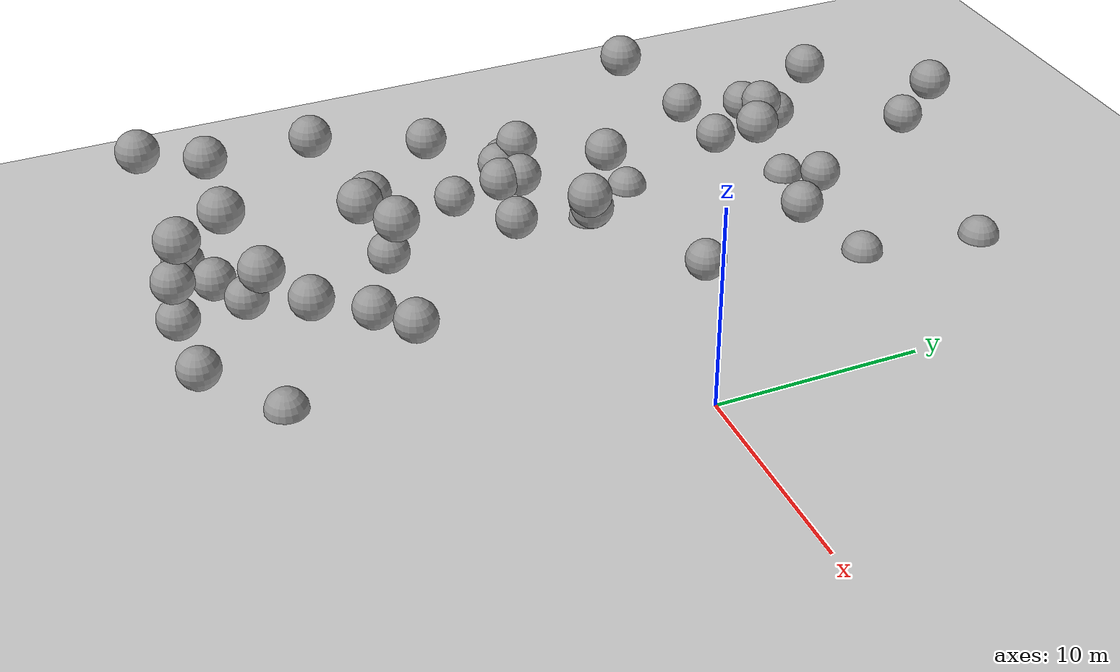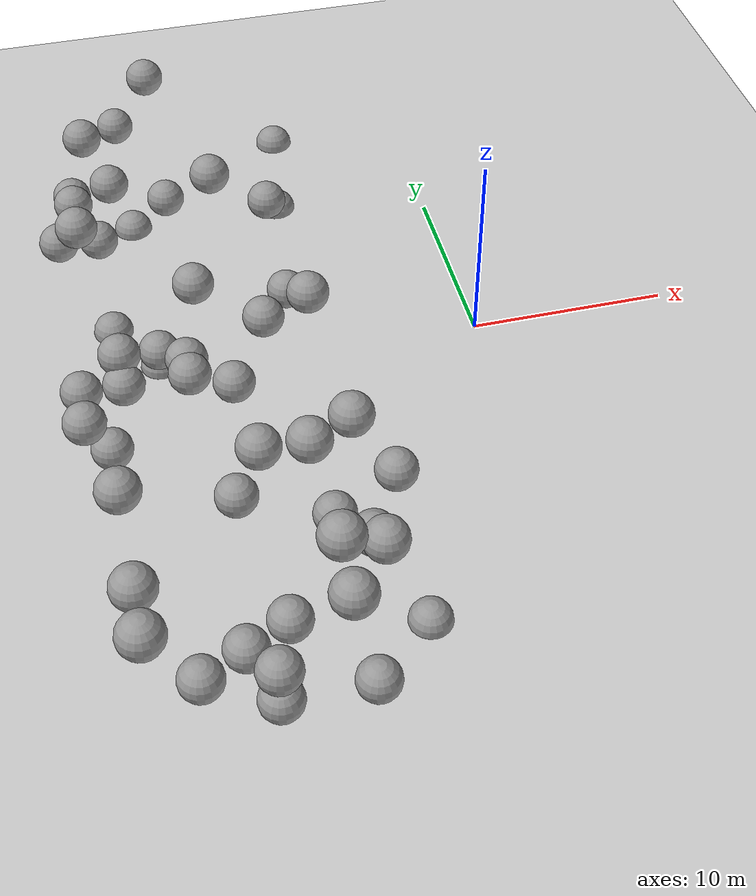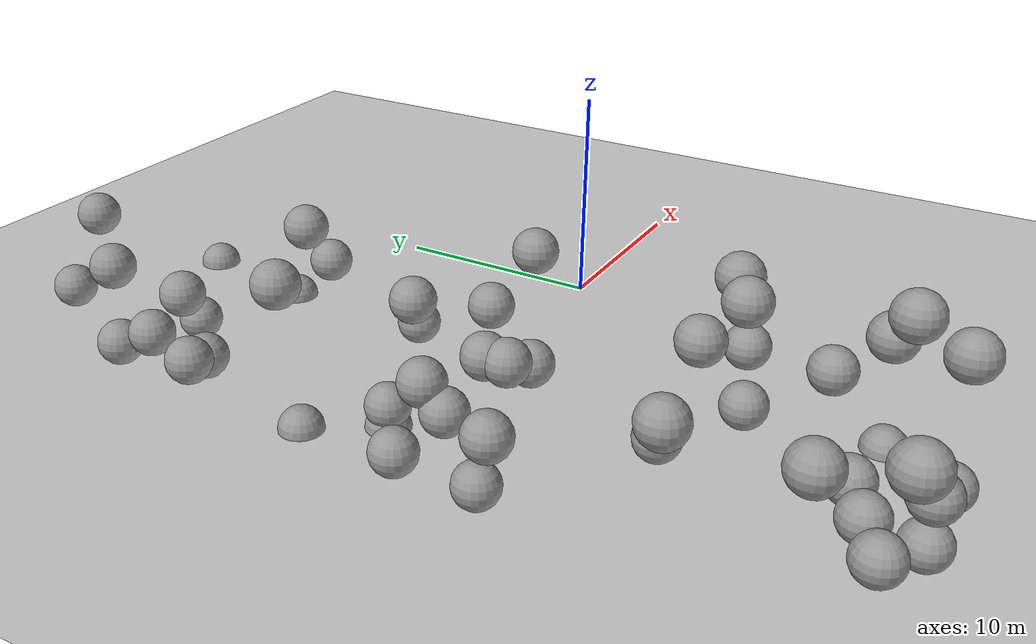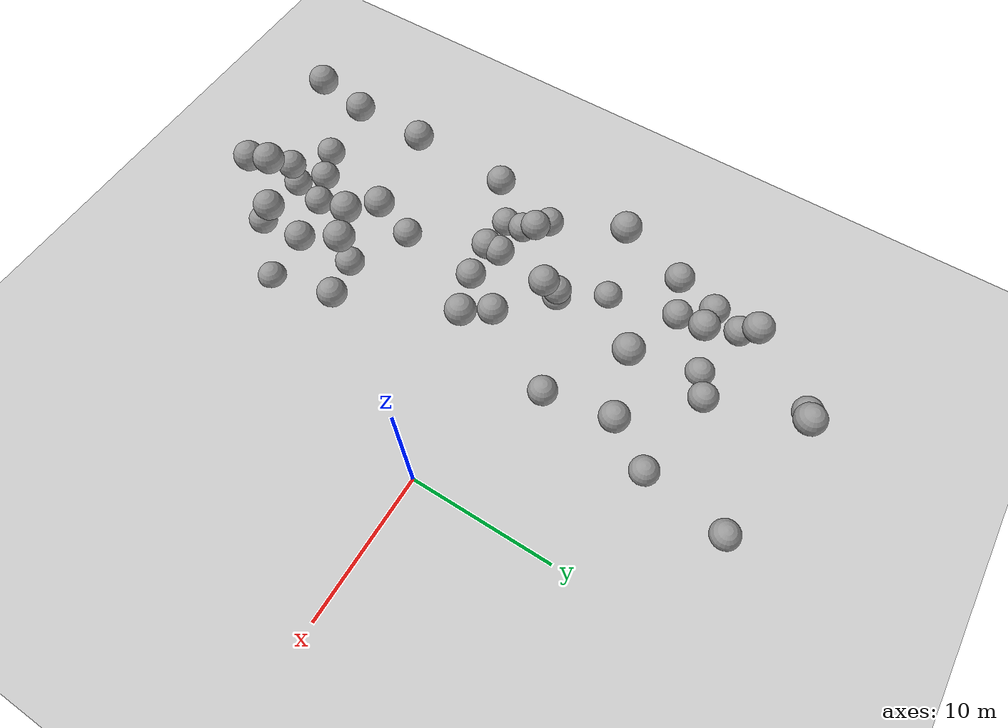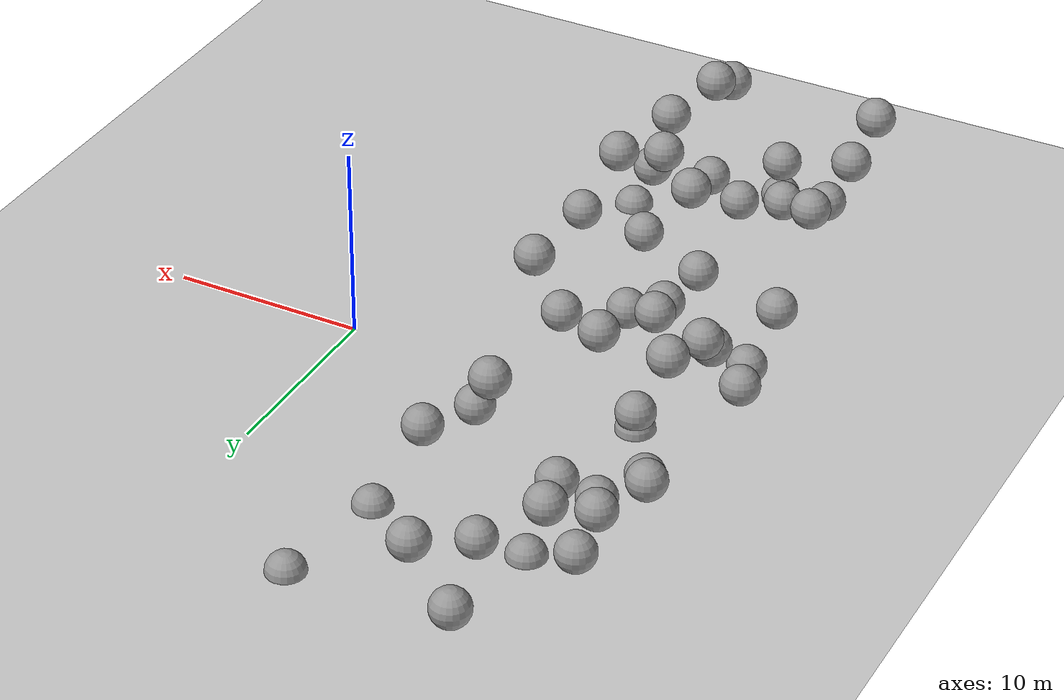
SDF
<sdf version="1.7">
 <world name="default">
  <model name="ground_plane">
   <static>1</static>
   <link name="link">
    <collision name="collision">
     <geometry><plane><normal>0 0 1</normal><size>100 100</size></plane></geometry>
     <surface>
      <contact><collide_bitmask>65535</collide_bitmask></contact>
      <friction><ode><mu>100</mu><mu2>50</mu2></ode></friction>
     </surface>
    </collision>
    <visual name="visual">
     <cast_shadows>0</cast_shadows>
     <geometry><plane><normal>0 0 1</normal><size>100 100</size></plane></geometry>
     <material>
      <script><uri>file://media/materials/scripts/gazebo.material</uri><name>Gazebo/Grey</name></script>
     </material>
    </visual>
   </link>
  </model>
  <model name="sphere_1">
   <static>1</static>
   <pose>-16 1 1 0 0 0</pose>
   <link name="link">
    <inertial>
     <mass>418.87902047863906</mass>
     <inertia>
      <ixx>167.55160819145564</ixx>
      <iyy>167.55160819145564</iyy>
      <izz>167.55160819145564</izz>
      <ixy>0</ixy>
      <ixz>0</ixz>
      <iyz>0</iyz>
     </inertia>
    </inertial>
    <collision name="collision"><geometry><sphere><radius>1.0</radius></sphere></geometry></collision>
    <visual name="visual">
     <geometry><sphere><radius>1.0</radius></sphere></geometry>
     <material>
      <script><uri>file://media/materials/scripts/gazebo.material</uri><name>Gazebo/Grey</name></script>
     </material>
    </visual>
   </link>
  </model>
  <model name="sphere_2">
   <static>1</static>
   <pose>-19 -12 6 0 0 0</pose>
   <link name="link">
    <inertial>
     <mass>418.87902047863906</mass>
     <inertia>
      <ixx>167.55160819145564</ixx>
      <iyy>167.55160819145564</iyy>
      <izz>167.55160819145564</izz>
      <ixy>0</ixy>
      <ixz>0</ixz>
      <iyz>0</iyz>
     </inertia>
    </inertial>
    <collision name="collision"><geometry><sphere><radius>1.0</radius></sphere></geometry></collision>
    <visual name="visual">
     <geometry><sphere><radius>1.0</radius></sphere></geometry>
     <material>
      <script><uri>file://media/materials/scripts/gazebo.material</uri><name>Gazebo/Grey</name></script>
     </material>
    </visual>
   </link>
  </model>
  <model name="sphere_4">
   <static>1</static>
   <pose>-18 14 5 0 0 0</pose>
   <link name="link">
    <inertial>
     <mass>418.87902047863906</mass>
     <inertia>
      <ixx>167.55160819145564</ixx>
      <iyy>167.55160819145564</iyy>
      <izz>167.55160819145564</izz>
      <ixy>0</ixy>
      <ixz>0</ixz>
      <iyz>0</iyz>
     </inertia>
    </inertial>
    <collision name="collision"><geometry><sphere><radius>1.0</radius></sphere></geometry></collision>
    <visual name="visual">
     <geometry><sphere><radius>1.0</radius></sphere></geometry>
     <material>
      <script><uri>file://media/materials/scripts/gazebo.material</uri><name>Gazebo/Grey</name></script>
     </material>
    </visual>
   </link>
  </model>
  <model name="sphere_6">
   <static>1</static>
   <pose>-13 -11 6 0 0 0</pose>
   <link name="link">
    <inertial>
     <mass>418.87902047863906</mass>
     <inertia>
      <ixx>167.55160819145564</ixx>
      <iyy>167.55160819145564</iyy>
      <izz>167.55160819145564</izz>
      <ixy>0</ixy>
      <ixz>0</ixz>
      <iyz>0</iyz>
     </inertia>
    </inertial>
    <collision name="collision"><geometry><sphere><radius>1.0</radius></sphere></geometry></collision>
    <visual name="visual">
     <geometry><sphere><radius>1.0</radius></sphere></geometry>
     <material>
      <script><uri>file://media/materials/scripts/gazebo.material</uri><name>Gazebo/Grey</name></script>
     </material>
    </visual>
   </link>
  </model>
  <model name="sphere_12">
   <static>1</static>
   <pose>-9 9 3 0 0 0</pose>
   <link name="link">
    <inertial>
     <mass>418.87902047863906</mass>
     <inertia>
      <ixx>167.55160819145564</ixx>
      <iyy>167.55160819145564</iyy>
      <izz>167.55160819145564</izz>
      <ixy>0</ixy>
      <ixz>0</ixz>
      <iyz>0</iyz>
     </inertia>
    </inertial>
    <collision name="collision"><geometry><sphere><radius>1.0</radius></sphere></geometry></collision>
    <visual name="visual">
     <geometry><sphere><radius>1.0</radius></sphere></geometry>
     <material>
      <script><uri>file://media/materials/scripts/gazebo.material</uri><name>Gazebo/Grey</name></script>
     </material>
    </visual>
   </link>
  </model>
  <model name="sphere_14">
   <static>1</static>
   <pose>-7 18 0 0 0 0</pose>
   <link name="link">
    <inertial>
     <mass>418.87902047863906</mass>
     <inertia>
      <ixx>167.55160819145564</ixx>
      <iyy>167.55160819145564</iyy>
      <izz>167.55160819145564</izz>
      <ixy>0</ixy>
      <ixz>0</ixz>
      <iyz>0</iyz>
     </inertia>
    </inertial>
    <collision name="collision"><geometry><sphere><radius>1.0</radius></sphere></geometry></collision>
    <visual name="visual">
     <geometry><sphere><radius>1.0</radius></sphere></geometry>
     <material>
      <script><uri>file://media/materials/scripts/gazebo.material</uri><name>Gazebo/Grey</name></script>
     </material>
    </visual>
   </link>
  </model>
  <model name="sphere_15">
   <static>1</static>
   <pose>-7 -11 3 0 0 0</pose>
   <link name="link">
    <inertial>
     <mass>418.87902047863906</mass>
     <inertia>
      <ixx>167.55160819145564</ixx>
      <iyy>167.55160819145564</iyy>
      <izz>167.55160819145564</izz>
      <ixy>0</ixy>
      <ixz>0</ixz>
      <iyz>0</iyz>
     </inertia>
    </inertial>
    <collision name="collision"><geometry><sphere><radius>1.0</radius></sphere></geometry></collision>
    <visual name="visual">
     <geometry><sphere><radius>1.0</radius></sphere></geometry>
     <material>
      <script><uri>file://media/materials/scripts/gazebo.material</uri><name>Gazebo/Grey</name></script>
     </material>
    </visual>
   </link>
  </model>
  <model name="sphere_17">
   <static>1</static>
   <pose>-9 4 1 0 0 0</pose>
   <link name="link">
    <inertial>
     <mass>418.87902047863906</mass>
     <inertia>
      <ixx>167.55160819145564</ixx>
      <iyy>167.55160819145564</iyy>
      <izz>167.55160819145564</izz>
      <ixy>0</ixy>
      <ixz>0</ixz>
      <iyz>0</iyz>
     </inertia>
    </inertial>
    <collision name="collision"><geometry><sphere><radius>1.0</radius></sphere></geometry></collision>
    <visual name="visual">
     <geometry><sphere><radius>1.0</radius></sphere></geometry>
     <material>
      <script><uri>file://media/materials/scripts/gazebo.material</uri><name>Gazebo/Grey</name></script>
     </material>
    </visual>
   </link>
  </model>
  <model name="sphere_19">
   <static>1</static>
   <pose>-15 -4 4 0 0 0</pose>
   <link name="link">
    <inertial>
     <mass>418.87902047863906</mass>
     <inertia>
      <ixx>167.55160819145564</ixx>
      <iyy>167.55160819145564</iyy>
      <izz>167.55160819145564</izz>
      <ixy>0</ixy>
      <ixz>0</ixz>
      <iyz>0</iyz>
     </inertia>
    </inertial>
    <collision name="collision"><geometry><sphere><radius>1.0</radius></sphere></geometry></collision>
    <visual name="visual">
     <geometry><sphere><radius>1.0</radius></sphere></geometry>
     <material>
      <script><uri>file://media/materials/scripts/gazebo.material</uri><name>Gazebo/Grey</name></script>
     </material>
    </visual>
   </link>
  </model>
  <model name="sphere_20">
   <static>1</static>
   <pose>-16 1 0 0 0 0</pose>
   <link name="link">
    <inertial>
     <mass>418.87902047863906</mass>
     <inertia>
      <ixx>167.55160819145564</ixx>
      <iyy>167.55160819145564</iyy>
      <izz>167.55160819145564</izz>
      <ixy>0</ixy>
      <ixz>0</ixz>
      <iyz>0</iyz>
     </inertia>
    </inertial>
    <collision name="collision"><geometry><sphere><radius>1.0</radius></sphere></geometry></collision>
    <visual name="visual">
     <geometry><sphere><radius>1.0</radius></sphere></geometry>
     <material>
      <script><uri>file://media/materials/scripts/gazebo.material</uri><name>Gazebo/Grey</name></script>
     </material>
    </visual>
   </link>
  </model>
  <model name="sphere_21">
   <static>1</static>
   <pose>-18 -3 3 0 0 0</pose>
   <link name="link">
    <inertial>
     <mass>418.87902047863906</mass>
     <inertia>
      <ixx>167.55160819145564</ixx>
      <iyy>167.55160819145564</iyy>
      <izz>167.55160819145564</izz>
      <ixy>0</ixy>
      <ixz>0</ixz>
      <iyz>0</iyz>
     </inertia>
    </inertial>
    <collision name="collision"><geometry><sphere><radius>1.0</radius></sphere></geometry></collision>
    <visual name="visual">
     <geometry><sphere><radius>1.0</radius></sphere></geometry>
     <material>
      <script><uri>file://media/materials/scripts/gazebo.material</uri><name>Gazebo/Grey</name></script>
     </material>
    </visual>
   </link>
  </model>
  <model name="sphere_24">
   <static>1</static>
   <pose>-19 -17 6 0 0 0</pose>
   <link name="link">
    <inertial>
     <mass>418.87902047863906</mass>
     <inertia>
      <ixx>167.55160819145564</ixx>
      <iyy>167.55160819145564</iyy>
      <izz>167.55160819145564</izz>
      <ixy>0</ixy>
      <ixz>0</ixz>
      <iyz>0</iyz>
     </inertia>
    </inertial>
    <collision name="collision"><geometry><sphere><radius>1.0</radius></sphere></geometry></collision>
    <visual name="visual">
     <geometry><sphere><radius>1.0</radius></sphere></geometry>
     <material>
      <script><uri>file://media/materials/scripts/gazebo.material</uri><name>Gazebo/Grey</name></script>
     </material>
    </visual>
   </link>
  </model>
  <model name="sphere_29">
   <static>1</static>
   <pose>-18 9 2 0 0 0</pose>
   <link name="link">
    <inertial>
     <mass>418.87902047863906</mass>
     <inertia>
      <ixx>167.55160819145564</ixx>
      <iyy>167.55160819145564</iyy>
      <izz>167.55160819145564</izz>
      <ixy>0</ixy>
      <ixz>0</ixz>
      <iyz>0</iyz>
     </inertia>
    </inertial>
    <collision name="collision"><geometry><sphere><radius>1.0</radius></sphere></geometry></collision>
    <visual name="visual">
     <geometry><sphere><radius>1.0</radius></sphere></geometry>
     <material>
      <script><uri>file://media/materials/scripts/gazebo.material</uri><name>Gazebo/Grey</name></script>
     </material>
    </visual>
   </link>
  </model>
  <model name="sphere_30">
   <static>1</static>
   <pose>-18 4 0 0 0 0</pose>
   <link name="link">
    <inertial>
     <mass>418.87902047863906</mass>
     <inertia>
      <ixx>167.55160819145564</ixx>
      <iyy>167.55160819145564</iyy>
      <izz>167.55160819145564</izz>
      <ixy>0</ixy>
      <ixz>0</ixz>
      <iyz>0</iyz>
     </inertia>
    </inertial>
    <collision name="collision"><geometry><sphere><radius>1.0</radius></sphere></geometry></collision>
    <visual name="visual">
     <geometry><sphere><radius>1.0</radius></sphere></geometry>
     <material>
      <script><uri>file://media/materials/scripts/gazebo.material</uri><name>Gazebo/Grey</name></script>
     </material>
    </visual>
   </link>
  </model>
  <model name="sphere_34">
   <static>1</static>
   <pose>-9 -17 6 0 0 0</pose>
   <link name="link">
    <inertial>
     <mass>418.87902047863906</mass>
     <inertia>
      <ixx>167.55160819145564</ixx>
      <iyy>167.55160819145564</iyy>
      <izz>167.55160819145564</izz>
      <ixy>0</ixy>
      <ixz>0</ixz>
      <iyz>0</iyz>
     </inertia>
    </inertial>
    <collision name="collision"><geometry><sphere><radius>1.0</radius></sphere></geometry></collision>
    <visual name="visual">
     <geometry><sphere><radius>1.0</radius></sphere></geometry>
     <material>
      <script><uri>file://media/materials/scripts/gazebo.material</uri><name>Gazebo/Grey</name></script>
     </material>
    </visual>
   </link>
  </model>
  <model name="sphere_35">
   <static>1</static>
   <pose>-17 11 4 0 0 0</pose>
   <link name="link">
    <inertial>
     <mass>418.87902047863906</mass>
     <inertia>
      <ixx>167.55160819145564</ixx>
      <iyy>167.55160819145564</iyy>
      <izz>167.55160819145564</izz>
      <ixy>0</ixy>
      <ixz>0</ixz>
      <iyz>0</iyz>
     </inertia>
    </inertial>
    <collision name="collision"><geometry><sphere><radius>1.0</radius></sphere></geometry></collision>
    <visual name="visual">
     <geometry><sphere><radius>1.0</radius></sphere></geometry>
     <material>
      <script><uri>file://media/materials/scripts/gazebo.material</uri><name>Gazebo/Grey</name></script>
     </material>
    </visual>
   </link>
  </model>
  <model name="sphere_40">
   <static>1</static>
   <pose>-11 -1 4 0 0 0</pose>
   <link name="link">
    <inertial>
     <mass>418.87902047863906</mass>
     <inertia>
      <ixx>167.55160819145564</ixx>
      <iyy>167.55160819145564</iyy>
      <izz>167.55160819145564</izz>
      <ixy>0</ixy>
      <ixz>0</ixz>
      <iyz>0</iyz>
     </inertia>
    </inertial>
    <collision name="collision"><geometry><sphere><radius>1.0</radius></sphere></geometry></collision>
    <visual name="visual">
     <geometry><sphere><radius>1.0</radius></sphere></geometry>
     <material>
      <script><uri>file://media/materials/scripts/gazebo.material</uri><name>Gazebo/Grey</name></script>
     </material>
    </visual>
   </link>
  </model>
  <model name="sphere_41">
   <static>1</static>
   <pose>-14 13 1 0 0 0</pose>
   <link name="link">
    <inertial>
     <mass>418.87902047863906</mass>
     <inertia>
      <ixx>167.55160819145564</ixx>
      <iyy>167.55160819145564</iyy>
      <izz>167.55160819145564</izz>
      <ixy>0</ixy>
      <ixz>0</ixz>
      <iyz>0</iyz>
     </inertia>
    </inertial>
    <collision name="collision"><geometry><sphere><radius>1.0</radius></sphere></geometry></collision>
    <visual name="visual">
     <geometry><sphere><radius>1.0</radius></sphere></geometry>
     <material>
      <script><uri>file://media/materials/scripts/gazebo.material</uri><name>Gazebo/Grey</name></script>
     </material>
    </visual>
   </link>
  </model>
  <model name="sphere_44">
   <static>1</static>
   <pose>-19 4 7 0 0 0</pose>
   <link name="link">
    <inertial>
     <mass>418.87902047863906</mass>
     <inertia>
      <ixx>167.55160819145564</ixx>
      <iyy>167.55160819145564</iyy>
      <izz>167.55160819145564</izz>
      <ixy>0</ixy>
      <ixz>0</ixz>
      <iyz>0</iyz>
     </inertia>
    </inertial>
    <collision name="collision"><geometry><sphere><radius>1.0</radius></sphere></geometry></collision>
    <visual name="visual">
     <geometry><sphere><radius>1.0</radius></sphere></geometry>
     <material>
      <script><uri>file://media/materials/scripts/gazebo.material</uri><name>Gazebo/Grey</name></script>
     </material>
    </visual>
   </link>
  </model>
  <model name="sphere_47">
   <static>1</static>
   <pose>-14 -20 1 0 0 0</pose>
   <link name="link">
    <inertial>
     <mass>418.87902047863906</mass>
     <inertia>
      <ixx>167.55160819145564</ixx>
      <iyy>167.55160819145564</iyy>
      <izz>167.55160819145564</izz>
      <ixy>0</ixy>
      <ixz>0</ixz>
      <iyz>0</iyz>
     </inertia>
    </inertial>
    <collision name="collision"><geometry><sphere><radius>1.0</radius></sphere></geometry></collision>
    <visual name="visual">
     <geometry><sphere><radius>1.0</radius></sphere></geometry>
     <material>
      <script><uri>file://media/materials/scripts/gazebo.material</uri><name>Gazebo/Grey</name></script>
     </material>
    </visual>
   </link>
  </model>
  <model name="sphere_48">
   <static>1</static>
   <pose>-11 -12 7 0 0 0</pose>
   <link name="link">
    <inertial>
     <mass>418.87902047863906</mass>
     <inertia>
      <ixx>167.55160819145564</ixx>
      <iyy>167.55160819145564</iyy>
      <izz>167.55160819145564</izz>
      <ixy>0</ixy>
      <ixz>0</ixz>
      <iyz>0</iyz>
     </inertia>
    </inertial>
    <collision name="collision"><geometry><sphere><radius>1.0</radius></sphere></geometry></collision>
    <visual name="visual">
     <geometry><sphere><radius>1.0</radius></sphere></geometry>
     <material>
      <script><uri>file://media/materials/scripts/gazebo.material</uri><name>Gazebo/Grey</name></script>
     </material>
    </visual>
   </link>
  </model>
  <model name="sphere_49">
   <static>1</static>
   <pose>-14 -20 3 0 0 0</pose>
   <link name="link">
    <inertial>
     <mass>418.87902047863906</mass>
     <inertia>
      <ixx>167.55160819145564</ixx>
      <iyy>167.55160819145564</iyy>
      <izz>167.55160819145564</izz>
      <ixy>0</ixy>
      <ixz>0</ixz>
      <iyz>0</iyz>
     </inertia>
    </inertial>
    <collision name="collision"><geometry><sphere><radius>1.0</radius></sphere></geometry></collision>
    <visual name="visual">
     <geometry><sphere><radius>1.0</radius></sphere></geometry>
     <material>
      <script><uri>file://media/materials/scripts/gazebo.material</uri><name>Gazebo/Grey</name></script>
     </material>
    </visual>
   </link>
  </model>
  <model name="sphere_50">
   <static>1</static>
   <pose>-7 -17 0 0 0 0</pose>
   <link name="link">
    <inertial>
     <mass>418.87902047863906</mass>
     <inertia>
      <ixx>167.55160819145564</ixx>
      <iyy>167.55160819145564</iyy>
      <izz>167.55160819145564</izz>
      <ixy>0</ixy>
      <ixz>0</ixz>
      <iyz>0</iyz>
     </inertia>
    </inertial>
    <collision name="collision"><geometry><sphere><radius>1.0</radius></sphere></geometry></collision>
    <visual name="visual">
     <geometry><sphere><radius>1.0</radius></sphere></geometry>
     <material>
      <script><uri>file://media/materials/scripts/gazebo.material</uri><name>Gazebo/Grey</name></script>
     </material>
    </visual>
   </link>
  </model>
  <model name="sphere_55">
   <static>1</static>
   <pose>-12 8 6 0 0 0</pose>
   <link name="link">
    <inertial>
     <mass>418.87902047863906</mass>
     <inertia>
      <ixx>167.55160819145564</ixx>
      <iyy>167.55160819145564</iyy>
      <izz>167.55160819145564</izz>
      <ixy>0</ixy>
      <ixz>0</ixz>
      <iyz>0</iyz>
     </inertia>
    </inertial>
    <collision name="collision"><geometry><sphere><radius>1.0</radius></sphere></geometry></collision>
    <visual name="visual">
     <geometry><sphere><radius>1.0</radius></sphere></geometry>
     <material>
      <script><uri>file://media/materials/scripts/gazebo.material</uri><name>Gazebo/Grey</name></script>
     </material>
    </visual>
   </link>
  </model>
  <model name="sphere_57">
   <static>1</static>
   <pose>-19 11 3 0 0 0</pose>
   <link name="link">
    <inertial>
     <mass>418.87902047863906</mass>
     <inertia>
      <ixx>167.55160819145564</ixx>
      <iyy>167.55160819145564</iyy>
      <izz>167.55160819145564</izz>
      <ixy>0</ixy>
      <ixz>0</ixz>
      <iyz>0</iyz>
     </inertia>
    </inertial>
    <collision name="collision"><geometry><sphere><radius>1.0</radius></sphere></geometry></collision>
    <visual name="visual">
     <geometry><sphere><radius>1.0</radius></sphere></geometry>
     <material>
      <script><uri>file://media/materials/scripts/gazebo.material</uri><name>Gazebo/Grey</name></script>
     </material>
    </visual>
   </link>
  </model>
  <model name="sphere_61">
   <static>1</static>
   <pose>-20 8 3 0 0 0</pose>
   <link name="link">
    <inertial>
     <mass>418.87902047863906</mass>
     <inertia>
      <ixx>167.55160819145564</ixx>
      <iyy>167.55160819145564</iyy>
      <izz>167.55160819145564</izz>
      <ixy>0</ixy>
      <ixz>0</ixz>
      <iyz>0</iyz>
     </inertia>
    </inertial>
    <collision name="collision"><geometry><sphere><radius>1.0</radius></sphere></geometry></collision>
    <visual name="visual">
     <geometry><sphere><radius>1.0</radius></sphere></geometry>
     <material>
      <script><uri>file://media/materials/scripts/gazebo.material</uri><name>Gazebo/Grey</name></script>
     </material>
    </visual>
   </link>
  </model>
  <model name="sphere_62">
   <static>1</static>
   <pose>-17 -19 2 0 0 0</pose>
   <link name="link">
    <inertial>
     <mass>418.87902047863906</mass>
     <inertia>
      <ixx>167.55160819145564</ixx>
      <iyy>167.55160819145564</iyy>
      <izz>167.55160819145564</izz>
      <ixy>0</ixy>
      <ixz>0</ixz>
      <iyz>0</iyz>
     </inertia>
    </inertial>
    <collision name="collision"><geometry><sphere><radius>1.0</radius></sphere></geometry></collision>
    <visual name="visual">
     <geometry><sphere><radius>1.0</radius></sphere></geometry>
     <material>
      <script><uri>file://media/materials/scripts/gazebo.material</uri><name>Gazebo/Grey</name></script>
     </material>
    </visual>
   </link>
  </model>
  <model name="sphere_67">
   <static>1</static>
   <pose>-13 -17 2 0 0 0</pose>
   <link name="link">
    <inertial>
     <mass>418.87902047863906</mass>
     <inertia>
      <ixx>167.55160819145564</ixx>
      <iyy>167.55160819145564</iyy>
      <izz>167.55160819145564</izz>
      <ixy>0</ixy>
      <ixz>0</ixz>
      <iyz>0</iyz>
     </inertia>
    </inertial>
    <collision name="collision"><geometry><sphere><radius>1.0</radius></sphere></geometry></collision>
    <visual name="visual">
     <geometry><sphere><radius>1.0</radius></sphere></geometry>
     <material>
      <script><uri>file://media/materials/scripts/gazebo.material</uri><name>Gazebo/Grey</name></script>
     </material>
    </visual>
   </link>
  </model>
  <model name="sphere_68">
   <static>1</static>
   <pose>-11 -18 8 0 0 0</pose>
   <link name="link">
    <inertial>
     <mass>418.87902047863906</mass>
     <inertia>
      <ixx>167.55160819145564</ixx>
      <iyy>167.55160819145564</iyy>
      <izz>167.55160819145564</izz>
      <ixy>0</ixy>
      <ixz>0</ixz>
      <iyz>0</iyz>
     </inertia>
    </inertial>
    <collision name="collision"><geometry><sphere><radius>1.0</radius></sphere></geometry></collision>
    <visual name="visual">
     <geometry><sphere><radius>1.0</radius></sphere></geometry>
     <material>
      <script><uri>file://media/materials/scripts/gazebo.material</uri><name>Gazebo/Grey</name></script>
     </material>
    </visual>
   </link>
  </model>
  <model name="sphere_69">
   <static>1</static>
   <pose>-13 -4 3 0 0 0</pose>
   <link name="link">
    <inertial>
     <mass>418.87902047863906</mass>
     <inertia>
      <ixx>167.55160819145564</ixx>
      <iyy>167.55160819145564</iyy>
      <izz>167.55160819145564</izz>
      <ixy>0</ixy>
      <ixz>0</ixz>
      <iyz>0</iyz>
     </inertia>
    </inertial>
    <collision name="collision"><geometry><sphere><radius>1.0</radius></sphere></geometry></collision>
    <visual name="visual">
     <geometry><sphere><radius>1.0</radius></sphere></geometry>
     <material>
      <script><uri>file://media/materials/scripts/gazebo.material</uri><name>Gazebo/Grey</name></script>
     </material>
    </visual>
   </link>
  </model>
  <model name="sphere_76">
   <static>1</static>
   <pose>-11 -20 7 0 0 0</pose>
   <link name="link">
    <inertial>
     <mass>418.87902047863906</mass>
     <inertia>
      <ixx>167.55160819145564</ixx>
      <iyy>167.55160819145564</iyy>
      <izz>167.55160819145564</izz>
      <ixy>0</ixy>
      <ixz>0</ixz>
      <iyz>0</iyz>
     </inertia>
    </inertial>
    <collision name="collision"><geometry><sphere><radius>1.0</radius></sphere></geometry></collision>
    <visual name="visual">
     <geometry><sphere><radius>1.0</radius></sphere></geometry>
     <material>
      <script><uri>file://media/materials/scripts/gazebo.material</uri><name>Gazebo/Grey</name></script>
     </material>
    </visual>
   </link>
  </model>
  <model name="sphere_80">
   <static>1</static>
   <pose>-16 12 0 0 0 0</pose>
   <link name="link">
    <inertial>
     <mass>418.87902047863906</mass>
     <inertia>
      <ixx>167.55160819145564</ixx>
      <iyy>167.55160819145564</iyy>
      <izz>167.55160819145564</izz>
      <ixy>0</ixy>
      <ixz>0</ixz>
      <iyz>0</iyz>
     </inertia>
    </inertial>
    <collision name="collision"><geometry><sphere><radius>1.0</radius></sphere></geometry></collision>
    <visual name="visual">
     <geometry><sphere><radius>1.0</radius></sphere></geometry>
     <material>
      <script><uri>file://media/materials/scripts/gazebo.material</uri><name>Gazebo/Grey</name></script>
     </material>
    </visual>
   </link>
  </model>
  <model name="sphere_84">
   <static>1</static>
   <pose>-19 -5 1 0 0 0</pose>
   <link name="link">
    <inertial>
     <mass>418.87902047863906</mass>
     <inertia>
      <ixx>167.55160819145564</ixx>
      <iyy>167.55160819145564</iyy>
      <izz>167.55160819145564</izz>
      <ixy>0</ixy>
      <ixz>0</ixz>
      <iyz>0</iyz>
     </inertia>
    </inertial>
    <collision name="collision"><geometry><sphere><radius>1.0</radius></sphere></geometry></collision>
    <visual name="visual">
     <geometry><sphere><radius>1.0</radius></sphere></geometry>
     <material>
      <script><uri>file://media/materials/scripts/gazebo.material</uri><name>Gazebo/Grey</name></script>
     </material>
    </visual>
   </link>
  </model>
  <model name="sphere_85">
   <static>1</static>
   <pose>-20 -6 4 0 0 0</pose>
   <link name="link">
    <inertial>
     <mass>418.87902047863906</mass>
     <inertia>
      <ixx>167.55160819145564</ixx>
      <iyy>167.55160819145564</iyy>
      <izz>167.55160819145564</izz>
      <ixy>0</ixy>
      <ixz>0</ixz>
      <iyz>0</iyz>
     </inertia>
    </inertial>
    <collision name="collision"><geometry><sphere><radius>1.0</radius></sphere></geometry></collision>
    <visual name="visual">
     <geometry><sphere><radius>1.0</radius></sphere></geometry>
     <material>
      <script><uri>file://media/materials/scripts/gazebo.material</uri><name>Gazebo/Grey</name></script>
     </material>
    </visual>
   </link>
  </model>
  <model name="sphere_89">
   <static>1</static>
   <pose>-10 -12 2 0 0 0</pose>
   <link name="link">
    <inertial>
     <mass>418.87902047863906</mass>
     <inertia>
      <ixx>167.55160819145564</ixx>
      <iyy>167.55160819145564</iyy>
      <izz>167.55160819145564</izz>
      <ixy>0</ixy>
      <ixz>0</ixz>
      <iyz>0</iyz>
     </inertia>
    </inertial>
    <collision name="collision"><geometry><sphere><radius>1.0</radius></sphere></geometry></collision>
    <visual name="visual">
     <geometry><sphere><radius>1.0</radius></sphere></geometry>
     <material>
      <script><uri>file://media/materials/scripts/gazebo.material</uri><name>Gazebo/Grey</name></script>
     </material>
    </visual>
   </link>
  </model>
  <model name="sphere_90">
   <static>1</static>
   <pose>-14 1 5 0 0 0</pose>
   <link name="link">
    <inertial>
     <mass>418.87902047863906</mass>
     <inertia>
      <ixx>167.55160819145564</ixx>
      <iyy>167.55160819145564</iyy>
      <izz>167.55160819145564</izz>
      <ixy>0</ixy>
      <ixz>0</ixz>
      <iyz>0</iyz>
     </inertia>
    </inertial>
    <collision name="collision"><geometry><sphere><radius>1.0</radius></sphere></geometry></collision>
    <visual name="visual">
     <geometry><sphere><radius>1.0</radius></sphere></geometry>
     <material>
      <script><uri>file://media/materials/scripts/gazebo.material</uri><name>Gazebo/Grey</name></script>
     </material>
    </visual>
   </link>
  </model>
  <model name="sphere_93">
   <static>1</static>
   <pose>-8 12 0 0 0 0</pose>
   <link name="link">
    <inertial>
     <mass>418.87902047863906</mass>
     <inertia>
      <ixx>167.55160819145564</ixx>
      <iyy>167.55160819145564</iyy>
      <izz>167.55160819145564</izz>
      <ixy>0</ixy>
      <ixz>0</ixz>
      <iyz>0</iyz>
     </inertia>
    </inertial>
    <collision name="collision"><geometry><sphere><radius>1.0</radius></sphere></geometry></collision>
    <visual name="visual">
     <geometry><sphere><radius>1.0</radius></sphere></geometry>
     <material>
      <script><uri>file://media/materials/scripts/gazebo.material</uri><name>Gazebo/Grey</name></script>
     </material>
    </visual>
   </link>
  </model>
  <model name="sphere_94">
   <static>1</static>
   <pose>-15 -18 2 0 0 0</pose>
   <link name="link">
    <inertial>
     <mass>418.87902047863906</mass>
     <inertia>
      <ixx>167.55160819145564</ixx>
      <iyy>167.55160819145564</iyy>
      <izz>167.55160819145564</izz>
      <ixy>0</ixy>
      <ixz>0</ixz>
      <iyz>0</iyz>
     </inertia>
    </inertial>
    <collision name="collision"><geometry><sphere><radius>1.0</radius></sphere></geometry></collision>
    <visual name="visual">
     <geometry><sphere><radius>1.0</radius></sphere></geometry>
     <material>
      <script><uri>file://media/materials/scripts/gazebo.material</uri><name>Gazebo/Grey</name></script>
     </material>
    </visual>
   </link>
  </model>
  <model name="sphere_95">
   <static>1</static>
   <pose>-20 -2 2 0 0 0</pose>
   <link name="link">
    <inertial>
     <mass>418.87902047863906</mass>
     <inertia>
      <ixx>167.55160819145564</ixx>
      <iyy>167.55160819145564</iyy>
      <izz>167.55160819145564</izz>
      <ixy>0</ixy>
      <ixz>0</ixz>
      <iyz>0</iyz>
     </inertia>
    </inertial>
    <collision name="collision"><geometry><sphere><radius>1.0</radius></sphere></geometry></collision>
    <visual name="visual">
     <geometry><sphere><radius>1.0</radius></sphere></geometry>
     <material>
      <script><uri>file://media/materials/scripts/gazebo.material</uri><name>Gazebo/Grey</name></script>
     </material>
    </visual>
   </link>
  </model>
  <model name="sphere_97">
   <static>1</static>
   <pose>-19 -20 7 0 0 0</pose>
   <link name="link">
    <inertial>
     <mass>418.87902047863906</mass>
     <inertia>
      <ixx>167.55160819145564</ixx>
      <iyy>167.55160819145564</iyy>
      <izz>167.55160819145564</izz>
      <ixy>0</ixy>
      <ixz>0</ixz>
      <iyz>0</iyz>
     </inertia>
    </inertial>
    <collision name="collision"><geometry><sphere><radius>1.0</radius></sphere></geometry></collision>
    <visual name="visual">
     <geometry><sphere><radius>1.0</radius></sphere></geometry>
     <material>
      <script><uri>file://media/materials/scripts/gazebo.material</uri><name>Gazebo/Grey</name></script>
     </material>
    </visual>
   </link>
  </model>
  <model name="sphere_98">
   <static>1</static>
   <pose>-9 -2 6 0 0 0</pose>
   <link name="link">
    <inertial>
     <mass>418.87902047863906</mass>
     <inertia>
      <ixx>167.55160819145564</ixx>
      <iyy>167.55160819145564</iyy>
      <izz>167.55160819145564</izz>
      <ixy>0</ixy>
      <ixz>0</ixz>
      <iyz>0</iyz>
     </inertia>
    </inertial>
    <collision name="collision"><geometry><sphere><radius>1.0</radius></sphere></geometry></collision>
    <visual name="visual">
     <geometry><sphere><radius>1.0</radius></sphere></geometry>
     <material>
      <script><uri>file://media/materials/scripts/gazebo.material</uri><name>Gazebo/Grey</name></script>
     </material>
    </visual>
   </link>
  </model>
  <model name="sphere_100">
   <static>1</static>
   <pose>-9 -11 7 0 0 0</pose>
   <link name="link">
    <inertial>
     <mass>418.87902047863906</mass>
     <inertia>
      <ixx>167.55160819145564</ixx>
      <iyy>167.55160819145564</iyy>
      <izz>167.55160819145564</izz>
      <ixy>0</ixy>
      <ixz>0</ixz>
      <iyz>0</iyz>
     </inertia>
    </inertial>
    <collision name="collision"><geometry><sphere><radius>1.0</radius></sphere></geometry></collision>
    <visual name="visual">
     <geometry><sphere><radius>1.0</radius></sphere></geometry>
     <material>
      <script><uri>file://media/materials/scripts/gazebo.material</uri><name>Gazebo/Grey</name></script>
     </material>
    </visual>
   </link>
  </model>
  <model name="sphere_109">
   <static>1</static>
   <pose>-18 -2 4 0 0 0</pose>
   <link name="link">
    <inertial>
     <mass>418.87902047863906</mass>
     <inertia>
      <ixx>167.55160819145564</ixx>
      <iyy>167.55160819145564</iyy>
      <izz>167.55160819145564</izz>
      <ixy>0</ixy>
      <ixz>0</ixz>
      <iyz>0</iyz>
     </inertia>
    </inertial>
    <collision name="collision"><geometry><sphere><radius>1.0</radius></sphere></geometry></collision>
    <visual name="visual">
     <geometry><sphere><radius>1.0</radius></sphere></geometry>
     <material>
      <script><uri>file://media/materials/scripts/gazebo.material</uri><name>Gazebo/Grey</name></script>
     </material>
    </visual>
   </link>
  </model>
  <model name="sphere_111">
   <static>1</static>
   <pose>-19 13 2 0 0 0</pose>
   <link name="link">
    <inertial>
     <mass>418.87902047863906</mass>
     <inertia>
      <ixx>167.55160819145564</ixx>
      <iyy>167.55160819145564</iyy>
      <izz>167.55160819145564</izz>
      <ixy>0</ixy>
      <ixz>0</ixz>
      <iyz>0</iyz>
     </inertia>
    </inertial>
    <collision name="collision"><geometry><sphere><radius>1.0</radius></sphere></geometry></collision>
    <visual name="visual">
     <geometry><sphere><radius>1.0</radius></sphere></geometry>
     <material>
      <script><uri>file://media/materials/scripts/gazebo.material</uri><name>Gazebo/Grey</name></script>
     </material>
    </visual>
   </link>
  </model>
  <model name="sphere_115">
   <static>1</static>
   <pose>-15 -3 4 0 0 0</pose>
   <link name="link">
    <inertial>
     <mass>418.87902047863906</mass>
     <inertia>
      <ixx>167.55160819145564</ixx>
      <iyy>167.55160819145564</iyy>
      <izz>167.55160819145564</izz>
      <ixy>0</ixy>
      <ixz>0</ixz>
      <iyz>0</iyz>
     </inertia>
    </inertial>
    <collision name="collision"><geometry><sphere><radius>1.0</radius></sphere></geometry></collision>
    <visual name="visual">
     <geometry><sphere><radius>1.0</radius></sphere></geometry>
     <material>
      <script><uri>file://media/materials/scripts/gazebo.material</uri><name>Gazebo/Grey</name></script>
     </material>
    </visual>
   </link>
  </model>
  <model name="sphere_117">
   <static>1</static>
   <pose>-10 -20 1 0 0 0</pose>
   <link name="link">
    <inertial>
     <mass>418.87902047863906</mass>
     <inertia>
      <ixx>167.55160819145564</ixx>
      <iyy>167.55160819145564</iyy>
      <izz>167.55160819145564</izz>
      <ixy>0</ixy>
      <ixz>0</ixz>
      <iyz>0</iyz>
     </inertia>
    </inertial>
    <collision name="collision"><geometry><sphere><radius>1.0</radius></sphere></geometry></collision>
    <visual name="visual">
     <geometry><sphere><radius>1.0</radius></sphere></geometry>
     <material>
      <script><uri>file://media/materials/scripts/gazebo.material</uri><name>Gazebo/Grey</name></script>
     </material>
    </visual>
   </link>
  </model>
  <model name="sphere_120">
   <static>1</static>
   <pose>-14 -10 2 0 0 0</pose>
   <link name="link">
    <inertial>
     <mass>418.87902047863906</mass>
     <inertia>
      <ixx>167.55160819145564</ixx>
      <iyy>167.55160819145564</iyy>
      <izz>167.55160819145564</izz>
      <ixy>0</ixy>
      <ixz>0</ixz>
      <iyz>0</iyz>
     </inertia>
    </inertial>
    <collision name="collision"><geometry><sphere><radius>1.0</radius></sphere></geometry></collision>
    <visual name="visual">
     <geometry><sphere><radius>1.0</radius></sphere></geometry>
     <material>
      <script><uri>file://media/materials/scripts/gazebo.material</uri><name>Gazebo/Grey</name></script>
     </material>
    </visual>
   </link>
  </model>
  <model name="sphere_134">
   <static>1</static>
   <pose>-9 -15 4 0 0 0</pose>
   <link name="link">
    <inertial>
     <mass>418.87902047863906</mass>
     <inertia>
      <ixx>167.55160819145564</ixx>
      <iyy>167.55160819145564</iyy>
      <izz>167.55160819145564</izz>
      <ixy>0</ixy>
      <ixz>0</ixz>
      <iyz>0</iyz>
     </inertia>
    </inertial>
    <collision name="collision"><geometry><sphere><radius>1.0</radius></sphere></geometry></collision>
    <visual name="visual">
     <geometry><sphere><radius>1.0</radius></sphere></geometry>
     <material>
      <script><uri>file://media/materials/scripts/gazebo.material</uri><name>Gazebo/Grey</name></script>
     </material>
    </visual>
   </link>
  </model>
  <model name="sphere_140">
   <static>1</static>
   <pose>-14 19 5 0 0 0</pose>
   <link name="link">
    <inertial>
     <mass>418.87902047863906</mass>
     <inertia>
      <ixx>167.55160819145564</ixx>
      <iyy>167.55160819145564</iyy>
      <izz>167.55160819145564</izz>
      <ixy>0</ixy>
      <ixz>0</ixz>
      <iyz>0</iyz>
     </inertia>
    </inertial>
    <collision name="collision"><geometry><sphere><radius>1.0</radius></sphere></geometry></collision>
    <visual name="visual">
     <geometry><sphere><radius>1.0</radius></sphere></geometry>
     <material>
      <script><uri>file://media/materials/scripts/gazebo.material</uri><name>Gazebo/Grey</name></script>
     </material>
    </visual>
   </link>
  </model>
  <model name="sphere_148">
   <static>1</static>
   <pose>-16 19 2 0 0 0</pose>
   <link name="link">
    <inertial>
     <mass>418.87902047863906</mass>
     <inertia>
      <ixx>167.55160819145564</ixx>
      <iyy>167.55160819145564</iyy>
      <izz>167.55160819145564</izz>
      <ixy>0</ixy>
      <ixz>0</ixz>
      <iyz>0</iyz>
     </inertia>
    </inertial>
    <collision name="collision"><geometry><sphere><radius>1.0</radius></sphere></geometry></collision>
    <visual name="visual">
     <geometry><sphere><radius>1.0</radius></sphere></geometry>
     <material>
      <script><uri>file://media/materials/scripts/gazebo.material</uri><name>Gazebo/Grey</name></script>
     </material>
    </visual>
   </link>
  </model>
 </world>
</sdf>
